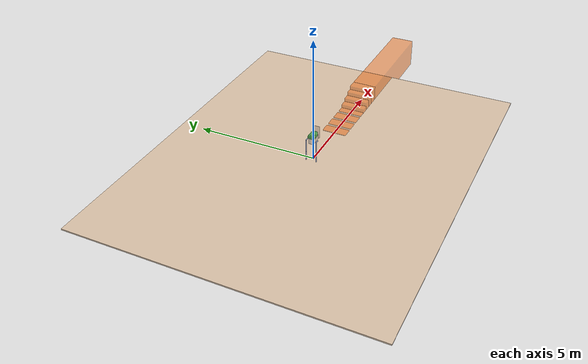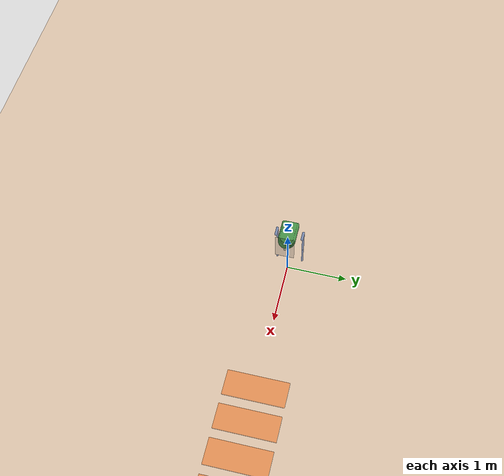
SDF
<?xml version='1.0'?>
<sdf version='1.9'>

  <model name='centaur_sim_scene'>
  <link name='ground'>
    <visual name='visual'>
      <pose>0 0 -0.025 0 0 0</pose>
      <geometry>
        <box>  <size>15.0 12.0 0.05</size> </box>
      </geometry>
      <material>
        <diffuse>0.9 0.8 0.7 1.0</diffuse>
      </material>
    </visual>
    <collision name="collision">
      <pose>0 0 -0.025 0 0 0</pose>
      <geometry>
        <box>  <size>15.0 12.0 0.05</size> </box>
      </geometry>
    </collision>
  </link>

  <frame name='x_block_init_frame' attached_to='ground'>
    <pose relative_to='ground'>0.217 0 0.990 0 0 0</pose>
  </frame>
  <link name='x_block'>
    <pose relative_to='x_block_init_frame'>0 0 0 0 0 0</pose>
  </link>
  <joint name='x_prismastic_joint' type='prismatic'>
    <pose relative_to='x_block_init_frame'>0 0 0 0 0 0</pose>
    <parent>ground</parent>
    <child>x_block</child>
    <axis>
      <xyz>1 0 0</xyz>
      <limit>
      </limit>
    </axis>
  </joint>

  <frame name='y_block_init_frame' attached_to='x_block'>
    <pose relative_to='x_block'>0.0 0 0 0 0 0</pose>
  </frame>
  <link name='y_block'>
    <pose relative_to='y_block_init_frame'>0 0 0 0 0 0</pose>
  </link>
  <joint name='y_prismastic_joint' type='prismatic'>
    <pose relative_to='y_block_init_frame'>0 0 0 0 0 0</pose>
    <parent>x_block</parent>
    <child>y_block</child>
    <axis>
      <xyz>0 1 0</xyz>
      <limit>
      </limit>
    </axis>
  </joint>

  <frame name='z_block_init_frame' attached_to='y_block'>
    <pose relative_to='y_block'>0 0.0 0 0 0 0</pose>
  </frame>
  <link name='z_block'>
    <pose relative_to='z_block_init_frame'>0 0 0 0 0 0</pose>
    <visual name='visual'>
      <pose relative_to='z_block_init_frame'>0.03 0 0.1 0 0 0</pose>
      <geometry> <box> <size>0.02 0.3 0.5</size> </box> </geometry>
      <material>
        <diffuse>0.1 0.1 0.1 0.2</diffuse>
      </material>
    </visual>
  </link>
  <joint name='z_prismastic_joint' type='prismatic'>
    <pose relative_to='z_block_init_frame'>0 0 0 0 0 0</pose>
    <parent>y_block</parent>
    <child>z_block</child>
    <axis>
      <xyz>0 0 1</xyz>
      <limit>
      </limit>
    </axis>
  </joint>

  <frame name='f_t_sensor_frame' attached_to='z_block'>
    <pose relative_to='z_block'>0 0 -0.0 0 0 0</pose>
  </frame>
  <link name='f_t_sensor_link'>
    <pose relative_to='f_t_sensor_frame'>0 0 0 0 0 0</pose>
    <visual name='visual'>
      <pose relative_to='f_t_sensor_frame'>0 0 0 0 0 0</pose>
      <geometry>
       <sphere> <radius> 0.02 </radius> </sphere>
      </geometry>
      <material>
        <diffuse>0.913 0.913 0.847 1.0</diffuse>
      </material>
    </visual>
  </link>
  <joint name='f_t_sensor_fixed_joint' type='fixed'>
    <pose relative_to='f_t_sensor_frame'>0.0000 0 0 0 0 0</pose>
    <parent>z_block</parent>
    <child>f_t_sensor_link</child>
  </joint>

  <frame name='roll_joint_frame' attached_to='f_t_sensor_link'>
    <pose relative_to='f_t_sensor_link'>-0.001 0 0 0 0 0</pose>
  </frame>
  <joint name='roll_joint' type='revolute'>
    <pose relative_to='roll_joint_frame'>0 0 0 0 0 0</pose>
    <parent>f_t_sensor_link</parent>
    <child>roll_block</child>
    <axis>
      <xyz>1 0 0</xyz>
      <limit>
        <effort>140.0</effort>
        <velocity>93.0</velocity>
      </limit>
    </axis>
  </joint>
  <link name='roll_block'>
    <pose relative_to='roll_joint_frame'>0 0 0 0 0 0</pose>
  </link>

  <frame name='pitch_joint_frame' attached_to='roll_block'>
    <pose relative_to='roll_block'>0 0 0 0 0 0</pose>
  </frame>
  <joint name='pitch_joint' type='revolute'>
    <pose relative_to='pitch_joint_frame'>0 0 0 0 0 0</pose>
    <parent>roll_block</parent>
    <child>pitch_block</child>
    <axis>
      <xyz>0 1 0</xyz>
      <limit>
        <effort>140.0</effort>
        <velocity>93.0</velocity>
      </limit>
    </axis>
  </joint>
  <link name='pitch_block'>
    <pose relative_to='pitch_joint_frame'>0 0 0 0 0 0</pose>
  </link>

  <frame name='yaw_joint_frame' attached_to='pitch_block'>
    <pose relative_to='pitch_block'>0 0 0 0 0 0</pose>
  </frame>
  <joint name='yaw_joint' type='revolute'>
    <pose relative_to='yaw_joint_frame'>0 0 0 0 0 0</pose>
    <parent>pitch_block</parent>
    <child>yaw_block</child>
    <axis>
      <xyz>0 0 1</xyz>
      <limit>
        <effort>140.0</effort>
        <velocity>93.0</velocity>
      </limit>
    </axis>
  </joint>
  <link name='yaw_block'>
    <pose relative_to='yaw_joint_frame'>0 0 0 0 0 0</pose>
  </link>

  <joint name='base' type='fixed'>
    <parent>yaw_block</parent>
    <child>floating_base</child>
  </joint>
  <link name='floating_base'>
    <pose relative_to='yaw_joint_frame'>-0.216 0 -0.09 0 0 0</pose>
  </link>

  <joint name='floating_base_fixed_to_torso' type='fixed'>
    <parent>floating_base</parent>
    <child>torso</child>
  </joint>

  <link name='torso'>
    <pose relative_to='floating_base'>0 0 0 0 0 0</pose>
    <visual name='visual'>
      <pose relative_to='floating_base'>0 0 0 0 0 0</pose>
      <geometry>
        <box> <size>0.432 0.2 0.22</size> </box>
      </geometry>
      <material>
        <diffuse>0.62 0.62 0.62 0.45</diffuse>
      </material>
    </visual>
    <inertial>
      <mass>20.0</mass>
      <inertia> <ixx>0.1473</ixx> <iyy>0.3917</iyy> <izz>0.3777</izz> </inertia>
    </inertial>
    <collision name='collision'>
      <pose relative_to='floating_base'>0 0 0 0 0 0</pose>
      <geometry>
        <box> <size>0.432 0.2 0.22</size> </box>
      </geometry>
    </collision>
  </link>

  <frame name='left_abad_joint_frame' attached_to='torso'>
    <pose relative_to='torso'>-0.048 0.173 0 0 0 0</pose>
  </frame>

  <joint name='left_abad_joint' type='revolute'>
    <pose relative_to='left_abad_joint_frame'>0 0 0 0 0 0</pose>
    <parent>torso</parent>
    <child>left_hip_from_abad</child>
    <axis>
      <xyz>1 0 0</xyz>
      <limit>
        <lower>-0.8028514559173915</lower>
        <upper>0.8028514559173915</upper>
        <effort>140.0</effort>
        <velocity>93.0</velocity>
      </limit>
    </axis>
  </joint>

  <link name='left_hip_from_abad'>
    <pose relative_to='left_abad_joint_frame'>0 0 0 0 0 0</pose>
    <visual name='visual'>
      <pose relative_to='left_abad_joint_frame'>-0.08 0.04 0 0 1.5707963267948966 0</pose>
      <geometry>
        <cylinder> <length>0.14</length> <radius>0.02</radius> </cylinder>
      </geometry>
      <material>
        <diffuse>0.2656 0.4453 0.7656 0.6</diffuse>
      </material>
    </visual>
    <collision name='collision'>
      <pose relative_to='left_abad_joint_frame'>-0.14 0 0 1.5707963267948966 0 0</pose>
      <geometry>
        <cylinder> <length>0.127</length> <radius>0.084</radius> </cylinder>
      </geometry>
    </collision>
    <inertial>
      <pose>-0.14 0 0 1.5707963267948966 0 0</pose>
      <mass>1.7</mass>
      <inertia> <ixx>0.0053</ixx> <iyy>0.0053</iyy> <izz>0.006</izz> </inertia>
    </inertial>
  </link>

  <frame name='left_hip_joint_frame' attached_to='left_hip_from_abad'>
    <pose relative_to='left_hip_from_abad'>-0.14 0.04 0 0 0 0</pose>
  </frame>

  <joint name='left_hip_joint' type='revolute'>
    <pose relative_to='left_hip_joint_frame'>0 0 0 0 0 0</pose>
    <parent>left_hip_from_abad</parent>
    <child>left_thigh_from_hip</child>
    <axis>
      <xyz>0 1 0</xyz>
      <limit>
        <lower>-0.8028514559173915</lower>
        <upper>1.8028514559173915</upper>
        <effort>140.0</effort>
        <velocity>93.0</velocity>
      </limit>
    </axis>
  </joint>

  <link name='left_thigh_from_hip'>
    <pose relative_to='left_hip_joint_frame'>0 0 0 0 0 0</pose>
    <visual name='visual'>
      <pose relative_to='left_hip_joint_frame'>0 0 -0.256 0 0 0</pose>
      <geometry>
        <cylinder> <length>0.512</length> <radius>0.0175</radius> </cylinder>
      </geometry>
      <material>
        <diffuse>0.2656 0.4453 0.7656 0.6</diffuse>
      </material>
    </visual>
    <collision name='collision'>
      <pose relative_to='left_hip_joint_frame'>0 0 -0.256 0 0 0</pose>
      <geometry>
        <cylinder> <length>0.512</length> <radius>0.0175</radius> </cylinder>
      </geometry>
    </collision>
    <inertial>
      <pose>0 0 -0.256 0 0 0</pose>
      <mass>0.5</mass>
      <inertia> <ixx>0.0141</ixx> <iyy>0.0141</iyy> <izz>0.0001</izz> </inertia>
    </inertial>
  </link>

  <frame name='left_knee_joint_frame' attached_to='left_thigh_from_hip'>
    <pose relative_to='left_thigh_from_hip'>0 0 -0.512 0 0 0</pose>
  </frame>

  <joint name='left_knee_joint' type='revolute'>
    <pose relative_to='left_knee_joint_frame'>0 0 0 0 0 0</pose>
    <parent>left_thigh_from_hip</parent>
    <child>left_shank_from_knee</child>
    <axis>
      <xyz>0 1 0</xyz>
      <limit>
        <lower>-1.5</lower>
        <upper>0.0</upper>
        <effort>140.0</effort>
        <velocity>93.0</velocity>
      </limit>
    </axis>
  </joint>

  <link name='left_shank_from_knee'>
    <pose relative_to='left_knee_joint_frame'>0 0 0 0 0 0</pose>
    <visual name='visual'>
      <pose relative_to='left_knee_joint_frame'>0 0 -0.24 0 0 0</pose>
      <geometry>
        <cylinder> <length>0.48</length> <radius>0.015</radius> </cylinder>
      </geometry>
      <material>
        <diffuse>0.2656 0.4453 0.7656 0.6</diffuse>
      </material>
    </visual>
    <collision name='collision'>
      <pose relative_to='left_knee_joint_frame'>0 0 -0.24 0 0 0</pose>
      <geometry>
        <cylinder> <length>0.48</length> <radius>0.015</radius> </cylinder>
      </geometry>
    </collision>
    <inertial>
      <pose>0 0 -0.24 0 0 0</pose>
      <mass>0.5</mass>
      <inertia> <ixx>0.0083</ixx> <iyy>0.0083</iyy> <izz>0.0001</izz> </inertia>
    </inertial>
  </link>

  <frame name='left_foot_joint_frame' attached_to='left_shank_from_knee'>
    <pose relative_to='left_shank_from_knee'>0 0 -0.49 0 0 0</pose>
  </frame>

  <joint name='left_foot_fixed_joint' type='fixed'>
    <pose relative_to='left_foot_joint_frame'>0 0 0 0 0 0</pose>
    <parent>left_shank_from_knee</parent>
    <child>left_foot</child>
  </joint>

  <link name='left_foot'>
    <pose relative_to='left_foot_joint_frame'>0 0 0 0 0 0</pose>
    <visual name='visual'>
      <pose relative_to='left_foot_joint_frame'>0 0 0 0 0 0</pose>
      <geometry>
        <sphere> <radius>0.02</radius> </sphere>
      </geometry>
      <material>
        <diffuse>0.913725490196 0.913725490196 0.847058823529 0.9</diffuse>

      </material>
    </visual>
    <collision name='collision'>
      <pose relative_to='left_foot_joint_frame'>0 0 0 0 0 0</pose>
      <geometry>
        <sphere> <radius>0.02</radius> </sphere>
      </geometry>
    </collision>
  </link>

<!-- right side -->

  <frame name='right_abad_joint_frame' attached_to='torso'>
    <pose relative_to='torso'>-0.048 -0.173 0 0 0 0</pose>
  </frame>

  <joint name='right_abad_joint' type='revolute'>
    <pose relative_to='right_abad_joint_frame'>0 0 0 0 0 0</pose>
    <parent>torso</parent>
    <child>right_hip_from_abad</child>
    <axis>
      <xyz>1 0 0</xyz>
      <limit>
        <lower>-0.8028514559173915</lower>
        <upper>0.8028514559173915</upper>
        <effort>140.0</effort>
        <velocity>93.0</velocity>
      </limit>
    </axis>
  </joint>

  <link name='right_hip_from_abad'>
    <pose relative_to='right_abad_joint_frame'>0 0 0 0 0 0</pose>

    <visual name='visual'>
      <pose relative_to='right_abad_joint_frame'>-0.08 -0.04 0 0 1.5707963267948966 0</pose>
      <geometry>
        <cylinder> <length>0.14</length> <radius>0.02</radius> </cylinder>
      </geometry>
      <material>
        <diffuse>0.2656 0.4453 0.7656 0.6</diffuse>
      </material>
    </visual>

    <collision name='collision'>
      <pose relative_to='right_abad_joint_frame'>-0.14 0 0 1.5707963267948966 0 0</pose>
      <geometry>
        <cylinder> <length>0.127</length> <radius>0.084</radius> </cylinder>
      </geometry>
    </collision>
    <inertial>
      <pose>-0.14 0 0 1.5707963267948966 0 0</pose>
      <mass>1.7</mass>
      <inertia> <ixx>0.0053</ixx> <iyy>0.0053</iyy> <izz>0.006</izz> </inertia>
    </inertial>
  </link>

  <frame name='right_hip_joint_frame' attached_to='right_hip_from_abad'>
    <pose relative_to='right_hip_from_abad'>-0.14 -0.04 0 0 0 0</pose>
  </frame>

  <joint name='right_hip_joint' type='revolute'>
    <pose relative_to='right_hip_joint_frame'>0 0 0 0 0 0</pose>
    <parent>right_hip_from_abad</parent>
    <child>right_thigh_from_hip</child>
    <axis>
      <xyz>0 1 0</xyz>
      <limit>
        <lower>-0.8028514559173915</lower>
        <upper>1.8028514559173915</upper>
        <effort>140.0</effort>
        <velocity>93.0</velocity>
      </limit>
    </axis>
  </joint>

  <link name='right_thigh_from_hip'>
    <pose relative_to='right_hip_joint_frame'>0 0 0 0 0 0</pose>
    <visual name='visual'>
      <pose relative_to='right_hip_joint_frame'>0 0 -0.256 0 0 0</pose>
      <geometry>
        <cylinder> <length>0.512</length> <radius>0.0175</radius> </cylinder>
      </geometry>
      <material>
        <diffuse>0.2656 0.4453 0.7656 0.6</diffuse>
      </material>
    </visual>
    <collision name='collision'>
      <pose relative_to='right_hip_joint_frame'>0 0 -0.256 0 0 0</pose>
      <geometry>
        <cylinder> <length>0.512</length> <radius>0.0175</radius> </cylinder>
      </geometry>
    </collision>
    <inertial>
      <pose>0 0 -0.256 0 0 0</pose>
      <mass>0.5</mass>
      <inertia> <ixx>0.0141</ixx> <iyy>0.0141</iyy> <izz>0.0001</izz> </inertia>
    </inertial>
  </link>

  <frame name='right_knee_joint_frame' attached_to='right_thigh_from_hip'>
    <pose relative_to='right_thigh_from_hip'>0 0 -0.512 0 0 0</pose>
  </frame>

  <joint name='right_knee_joint' type='revolute'>
    <pose relative_to='right_knee_joint_frame'>0 0 0 0 0 0</pose>
    <parent>right_thigh_from_hip</parent>
    <child>right_shank_from_knee</child>
    <axis>
      <xyz>0 1 0</xyz>
      <limit>
        <lower>-1.5</lower>
        <upper>0.0</upper>
        <effort>140.0</effort>
        <velocity>93.0</velocity>
      </limit>
    </axis>
  </joint>

  <link name='right_shank_from_knee'>
    <pose relative_to='right_knee_joint_frame'>0 0 0 0 0 0</pose>
    <visual name='visual'>
      <pose relative_to='right_knee_joint_frame'>0 0 -0.24 0 0 0</pose>
      <geometry>
        <cylinder> <length>0.48</length> <radius>0.015</radius> </cylinder>
      </geometry>
      <material>
        <diffuse>0.2656 0.4453 0.7656 0.6</diffuse>
      </material>
    </visual>
    <collision name='collision'>
      <pose relative_to='right_knee_joint_frame'>0 0 -0.24 0 0 0</pose>
      <geometry>
        <cylinder> <length>0.48</length> <radius>0.015</radius> </cylinder>
      </geometry>
    </collision>
    <inertial>
      <pose>0 0 -0.24 0 0 0</pose>
      <mass>0.5</mass>
      <inertia> <ixx>0.0083</ixx> <iyy>0.0083</iyy> <izz>0.0001</izz> </inertia>
    </inertial>
  </link>

  <frame name='right_foot_joint_frame' attached_to='right_shank_from_knee'>
    <pose relative_to='right_shank_from_knee'>0 0 -0.49 0 0 0</pose>
  </frame>

  <joint name='right_foot_fixed_joint' type='fixed'>
    <pose relative_to='right_foot_joint_frame'>0 0 0 0 0 0</pose>
    <parent>right_shank_from_knee</parent>
    <child>right_foot</child>
  </joint>

  <link name='right_foot'>
    <pose relative_to='right_foot_joint_frame'>0 0 0 0 0 0</pose>
    <visual name='visual'>
      <pose relative_to='right_foot_joint_frame'>0 0 0 0 0 0</pose>
      <geometry>
        <sphere> <radius>0.02</radius> </sphere>
      </geometry>
      <material>
        <diffuse>0.913725490196 0.913725490196 0.847058823529 0.9</diffuse>
      </material>
    </visual>
    <collision name='collision'>
      <pose relative_to='right_foot_joint_frame'>0 0 0 0 0 0</pose>
      <geometry>
        <sphere> <radius>0.02</radius> </sphere>
      </geometry>
    </collision>
  </link>

  <!-- terrai -->

  <joint name='load_frame' type='fixed'>
    <parent>torso</parent>
    <child>load_link</child>
  </joint>

  <link name='load_link'>
    <pose relative_to='floating_base'>0 0 0.1 0 0 0</pose>
    <visual name='visual'>
      <pose relative_to='floating_base'>-0.22 0.135 0.11 0 0 -1.57</pose>
      <material>
        <diffuse>0.3 0.6 0.3 1.0</diffuse>
      </material>
      <geometry>
          <mesh>
            <scale>0.0009 0.0009 0.0009</scale>
            <uri>/home/haoyun/Data/Code/drake/workspace/centaur_sim/data/backpack_obj_paint.obj</uri>
          </mesh>
      </geometry>
    </visual>
    <inertial>
      <mass>0.0</mass>
      <inertia> <ixx>0.0</ixx> <iyy>0.0</iyy> <izz>0.0</izz> </inertia>
    </inertial>
  </link>

  <!-- gaps and stairs -->
  <frame name='terrain_zero_frame' attached_to='ground'>
    <pose relative_to='ground'>2.0 0 0.025 0 0 0</pose>
  </frame>

  <joint name='plane_1_joint' type='fixed'>
    <pose relative_to='terrain_zero_frame'>0 0 0 0 0 0</pose>
    <parent>ground</parent>
    <child>plane_1</child>
  </joint>

  <link name='plane_1'>
    <pose relative_to='terrain_zero_frame'>0.2 0.0 0 0 0 0</pose>
    <visual name='visual'>
      <pose relative_to='terrain_zero_frame'>0.2 0.0 0 0 0 0</pose>
      <geometry>
        <box> <size>0.4 1.0 0.04</size> </box>
      </geometry>
      <material>
        <diffuse>1.0 0.423529411765 0.0392156862745 0.5</diffuse>
      </material>
    </visual>
    <collision name='collision'>
      <pose relative_to='terrain_zero_frame'>0.2 0 0 0 0 0</pose>
      <geometry>
        <box> <size>0.4 1.0 0.04</size> </box>
      </geometry>
    </collision>
  </link>

  <joint name='plane_2_joint' type='fixed'>
    <pose relative_to='plane_1'>0 0 0 0 0 0</pose>
    <parent>ground</parent>
    <child>plane_2</child>
  </joint>

  <link name='plane_2'>
    <pose relative_to='plane_1'>0.5515 0.0 0 0 0 0</pose>
    <visual name='visual'>
      <pose relative_to='plane_1'>0.5515 0.0 0 0 0 0</pose>
      <geometry>
        <box> <size>0.397 1.0 0.04</size> </box>
      </geometry>
      <material>
        <diffuse>1.0 0.423529411765 0.0392156862745 0.5</diffuse>
      </material>
    </visual>
    <collision name='collision'>
      <pose relative_to='plane_1'>0.5515 0.0 0 0 0 0</pose>
      <geometry>
        <box> <size>0.397 1.0 0.04</size> </box>
      </geometry>
    </collision>
  </link>

  <joint name='plane_3_joint' type='fixed'>
    <pose relative_to='plane_2'>0 0 0 0 0 0</pose>
    <parent>ground</parent>
    <child>plane_3</child>
  </joint>

  <link name='plane_3'>
    <pose relative_to='plane_2'>0.5535 0.0 0 0 0 0</pose>
    <visual name='visual'>
      <pose relative_to='plane_2'>0.5535 0.0 0 0 0 0</pose>
      <geometry>
        <box> <size>0.41 1.0 0.04</size> </box>
      </geometry>
      <material>
        <diffuse>1.0 0.423529411765 0.0392156862745 0.5</diffuse>
      </material>
    </visual>
    <collision name='collision'>
      <pose relative_to='plane_2'>0.5535 0.0 0 0 0 0</pose>
      <geometry>
        <box> <size>0.41 1.0 0.04</size> </box>
      </geometry>
    </collision>
  </link>

  <joint name='plane_4_joint' type='fixed'>
    <pose relative_to='plane_3'>0 0 0 0 0 0</pose>
    <parent>ground</parent>
    <child>plane_4</child>
  </joint>

  <link name='plane_4'>
    <pose relative_to='plane_3'>0.5 0.0 0 0 0 0</pose>
    <visual name='visual'>
      <pose relative_to='plane_3'>0.5 0.0 0 0 0 0</pose>
      <geometry>
        <box> <size>0.29 1.0 0.04</size> </box>
      </geometry>
      <material>
        <diffuse>1.0 0.423529411765 0.0392156862745 0.5</diffuse>
      </material>
    </visual>
    <collision name='collision'>
      <pose relative_to='plane_3'>0.5 0.0 0 0 0 0</pose>
      <geometry>
        <box> <size>0.29 1.0 0.04</size> </box>
      </geometry>
    </collision>
  </link>

  <joint name='stair_1_joint' type='fixed'>
    <pose relative_to='plane_4'>0 0 0 0 0 0</pose>
    <parent>ground</parent>
    <child>stair_1</child>
  </joint>

  <link name='stair_1'>
    <pose relative_to='plane_4'>0.2995 0.0 0 0 0 0</pose>
    <visual name='visual'>
      <pose relative_to='plane_4'>0.2995 0.0 0 0 0 0</pose>
      <geometry>
        <box> <size>0.309 1.0 0.336</size> </box>
      </geometry>
      <material>
        <diffuse>1.0 0.423529411765 0.0392156862745 0.5</diffuse>
      </material>
    </visual>
    <collision name='collision'>
      <pose relative_to='plane_4'>0.2995 0.0 0 0 0 0</pose>
      <geometry>
        <box> <size>0.309 1.0 0.336</size> </box>
      </geometry>
    </collision>
  </link>

  <joint name='stair_2_joint' type='fixed'>
    <pose relative_to='plane_4'>0 0 0 0 0 0</pose>
    <parent>ground</parent>
    <child>stair_2</child>
  </joint>

  <link name='stair_2'>
    <pose relative_to='stair_1'>0.2995 0.0 0 0 0 0</pose>
    <visual name='visual'>
      <pose relative_to='stair_1'>0.2995 0.0 0 0 0 0</pose>
      <geometry>
        <box> <size>0.29 1.0 0.634</size> </box>
      </geometry>
      <material>
        <diffuse>1.0 0.423529411765 0.0392156862745 0.5</diffuse>
      </material>
    </visual>
    <collision name='collision'>
      <pose relative_to='stair_1'>0.2995 0.0 0 0 0 0</pose>
      <geometry>
        <box> <size>0.29 1.0 0.634</size> </box>
      </geometry>
    </collision>
  </link>

  <joint name='stair_3_joint' type='fixed'>
    <pose relative_to='plane_4'>0 0 0 0 0 0</pose>
    <parent>ground</parent>
    <child>stair_3</child>
  </joint>

  <link name='stair_3'>
    <pose relative_to='stair_2'>0.287 0.0 0 0 0 0</pose>
    <visual name='visual'>
      <pose relative_to='stair_2'>0.287 0.0 0 0 0 0</pose>
      <geometry>
        <box> <size>0.284 1.0 0.944</size> </box>
      </geometry>
      <material>
        <diffuse>1.0 0.423529411765 0.0392156862745 0.5</diffuse>
      </material>
    </visual>
    <collision name='collision'>
      <pose relative_to='stair_2'>0.287 0.0 0 0 0 0</pose>
      <geometry>
        <box> <size>0.284 1.0 0.944</size> </box>
      </geometry>
    </collision>
  </link>

  <joint name='stair_4_joint' type='fixed'>
    <pose relative_to='plane_4'>0 0 0 0 0 0</pose>
    <parent>ground</parent>
    <child>stair_4</child>
  </joint>

  <link name='stair_4'>
    <pose relative_to='stair_3'>0.3485 0.0 0 0 0 0</pose>
    <visual name='visual'>
      <pose relative_to='stair_3'>0.3485 0.0 0 0 0 0</pose>
      <geometry>
        <box> <size>0.413 1.0 1.244</size> </box>
      </geometry>
      <material>
        <diffuse>1.0 0.423529411765 0.0392156862745 0.5</diffuse>
      </material>
    </visual>
    <collision name='collision'>
      <pose relative_to='stair_3'>0.3485 0.0 0 0 0 0</pose>
      <geometry>
        <box> <size>0.413 1.0 1.244</size> </box>
      </geometry>
    </collision>
  </link>

  <joint name='extend_joint' type='fixed'>
    <pose relative_to='stair_4'>2.5 0 0 0 0 0</pose>
    <parent>ground</parent>
    <child>extend_plane</child>
  </joint>

  <link name='extend_plane'>
    <pose relative_to='stair_4'>2.7 0.0 0 0 0 0</pose>
    <visual name='visual'>
      <pose relative_to='stair_4'>2.7 0.0 0 0 0 0</pose>
      <geometry>
        <box> <size>5 1.0 1.244</size> </box>
      </geometry>
      <material>
        <diffuse>1.0 0.423529411765 0.0392156862745 0.5</diffuse>
      </material>
    </visual>
    <collision name='collision'>
      <pose relative_to='stair_4'>2.7 0.0 0 0 0 0</pose>
      <geometry>
        <box> <size>5 1.0 1.244</size> </box>
      </geometry>
    </collision>
  </link>

  </model>

</sdf>
